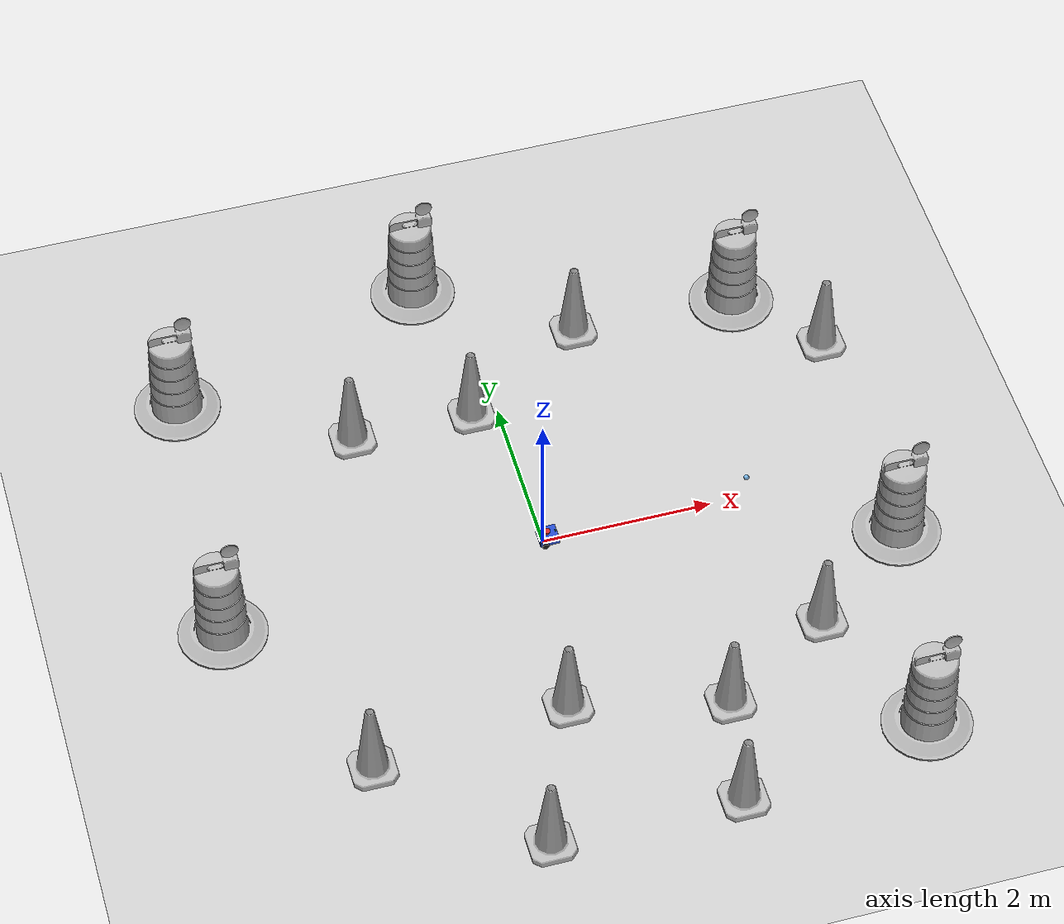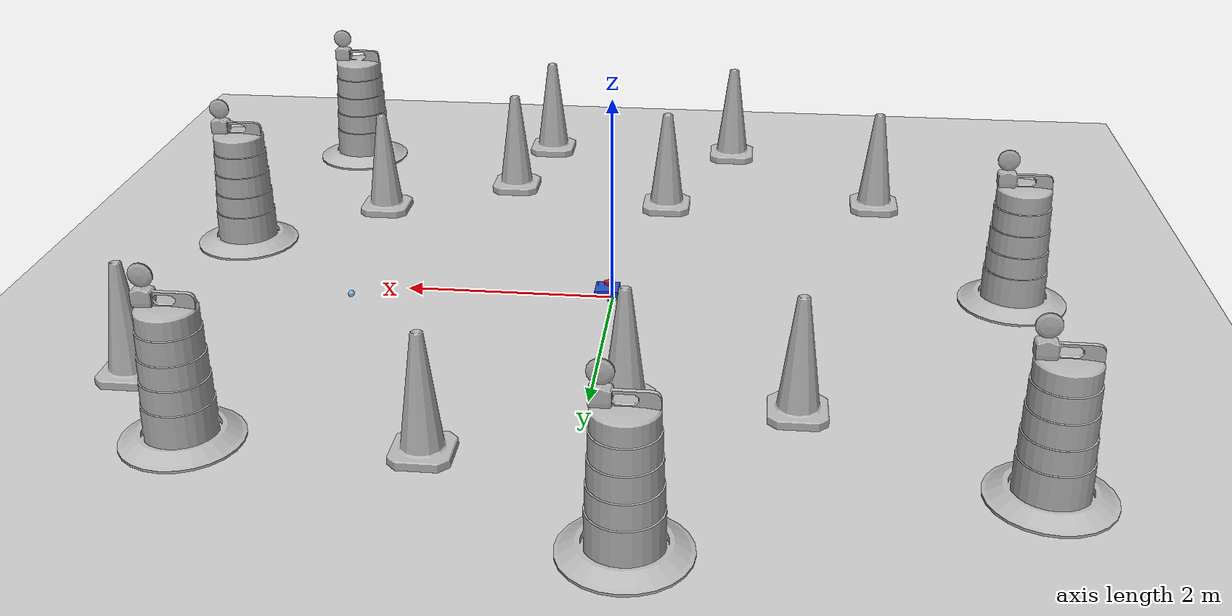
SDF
<sdf version="1.7">
 <world name="default">
  <light name="sun" type="directional">
   <pose>0 0 10 0 -0 0</pose>
   <diffuse>0.8 0.8 0.8 1</diffuse>
   <specular>0.2 0.2 0.2 1</specular>
   <attenuation>
    <range>1000</range>
    <constant>0.9</constant>
    <linear>0.01</linear>
    <quadratic>0.001</quadratic>
   </attenuation>
   <direction>-0.5 0.1 -0.9</direction>
   <spot><inner_angle>0</inner_angle><outer_angle>0</outer_angle><falloff>0</falloff></spot>
  </light>
  <model name="ground_plane">
   <static>1</static>
   <link name="link">
    <collision name="collision">
     <geometry><plane><normal>0 0 1</normal><size>100 100</size></plane></geometry>
     <surface>
      <contact><collide_bitmask>65535</collide_bitmask></contact>
      <friction><ode><mu>100</mu><mu2>50</mu2></ode></friction>
     </surface>
    </collision>
    <visual name="visual">
     <cast_shadows>0</cast_shadows>
     <geometry><plane><normal>0 0 1</normal><size>100 100</size></plane></geometry>
     <material>
      <script><uri>file://media/materials/scripts/gazebo.material</uri><name>Gazebo/Grey</name></script>
     </material>
    </visual>
   </link>
  </model>
  <gravity>0 0 -9.8</gravity>
  <magnetic_field>6e-06 2.3e-05 -4.2e-05</magnetic_field>
  <atmosphere type="adiabatic"/>
  <physics type="ode">
   <max_step_size>0.001</max_step_size>
   <real_time_factor>1</real_time_factor>
   <real_time_update_rate>1000</real_time_update_rate>
  </physics>
  <scene><ambient>0.4 0.4 0.4 1</ambient><background>0.7 0.7 0.7 1</background><shadows>1</shadows></scene>
  <audio><device>default</device></audio>
  <spherical_coordinates>
   <surface_model>EARTH_WGS84</surface_model>
   <latitude_deg>0</latitude_deg>
   <longitude_deg>0</longitude_deg>
   <elevation>0</elevation>
   <heading_deg>0</heading_deg>
  </spherical_coordinates>
  <model name="my_bot">
   <link name="base_link">
    <inertial>
     <pose>0.058676 0 0.043869 0 -0 0</pose>
     <mass>0.701</mass>
     <inertia>
      <ixx>0.00324724</ixx>
      <ixy>0</ixy>
      <ixz>0.000339625</ixz>
      <iyy>0.00355537</iyy>
      <iyz>0</iyz>
      <izz>0.00467089</izz>
     </inertia>
    </inertial>
    <collision name="base_link_fixed_joint_lump__chassis_collision">
     <pose>0.05251 0 0.037505 0 -0 0</pose>
     <geometry><box><size>0.225 0.225 0.07501</size></box></geometry>
    </collision>
    <collision name="base_link_fixed_joint_lump__caster_wheel_collision_1">
     <pose>0.10876 0 0 0 -0 0</pose>
     <geometry><sphere><radius>0.04</radius></sphere></geometry>
     <surface><friction><ode><mu>0.001</mu><mu2>0.001</mu2></ode></friction></surface>
    </collision>
    <collision name="base_link_fixed_joint_lump__laser_frame_collision_2">
     <pose>0.04001 0 0.12 0 -0 0</pose>
     <geometry><cylinder><length>0.025</length><radius>0.04</radius></cylinder></geometry>
    </collision>
    <collision name="base_link_fixed_joint_lump__imu_link_collision_3">
     <geometry><box><size>0.001 0.001 0.001</size></box></geometry>
    </collision>
    <visual name="base_link_fixed_joint_lump__chassis_visual">
     <pose>0.05251 0 0.037505 0 -0 0</pose>
     <geometry><box><size>0.225 0.225 0.07501</size></box></geometry>
     <material>
      <script><name>Gazebo/Blue</name><uri>file://media/materials/scripts/gazebo.material</uri></script>
     </material>
    </visual>
    <visual name="base_link_fixed_joint_lump__camera_link_visual_1">
     <pose>0.14001 0 0.10285 0 -0 0</pose>
     <geometry><box><size>0.005 0.025 0.025</size></box></geometry>
     <material>
      <script><name>Gazebo/Green</name><uri>file://media/materials/scripts/gazebo.material</uri></script>
     </material>
    </visual>
    <visual name="base_link_fixed_joint_lump__caster_wheel_visual_2">
     <pose>0.10876 0 0 0 -0 0</pose>
     <geometry><sphere><radius>0.04</radius></sphere></geometry>
     <material>
      <script><name>Gazebo/White</name><uri>file://media/materials/scripts/gazebo.material</uri></script>
     </material>
    </visual>
    <visual name="base_link_fixed_joint_lump__laser_frame_visual_3">
     <pose>0.04001 0 0.12 0 -0 0</pose>
     <geometry><cylinder><length>0.025</length><radius>0.04</radius></cylinder></geometry>
     <material>
      <script><name>Gazebo/Red</name><uri>file://media/materials/scripts/gazebo.material</uri></script>
     </material>
    </visual>
    <visual name="base_link_fixed_joint_lump__imu_link_visual_4">
     <geometry><box><size>0.001 0.001 0.001</size></box></geometry>
    </visual>
    <sensor name="camera" type="camera">
     <visualize>1</visualize>
     <update_rate>10</update_rate>
     <camera>
      <horizontal_fov>1.089</horizontal_fov>
      <image><format>R8G8B8</format><width>640</width><height>480</height></image>
      <clip><near>0.05</near><far>8</far></clip>
     </camera>
     <plugin name="camera_controller" filename="libgazebo_ros_camera.so">
      <frame_name>camera_link_optical</frame_name>
     </plugin>
     <pose>0.14001 0 0.10285 0 -0 0</pose>
    </sensor>
    <sensor name="laser" type="ray">
     <visualize>0</visualize>
     <update_rate>10</update_rate>
     <ray>
      <scan>
       <horizontal>
        <samples>360</samples>
        <min_angle>-3.14</min_angle>
        <max_angle>3.14</max_angle>
        <resolution>1</resolution>
       </horizontal>
       <vertical><samples>1</samples><min_angle>0</min_angle><max_angle>0</max_angle></vertical>
      </scan>
      <range><min>0.3</min><max>12</max></range>
     </ray>
     <plugin name="laser_controller" filename="libgazebo_ros_ray_sensor.so">
      <ros><argument>~/out:=scan</argument></ros>
      <output_type>sensor_msgs/LaserScan</output_type>
      <frame_name>laser_frame</frame_name>
     </plugin>
     <pose>0.04001 0 0.12 0 -0 0</pose>
    </sensor>
    <sensor name="imu_sensor" type="imu">
     <plugin name="imu_plugin" filename="libgazebo_ros_imu_sensor.so">
      <initial_orientation_as_reference>0</initial_orientation_as_reference>
      <frame_name>imu_link</frame_name>
      <ros><namespace>/imu</namespace><remapping>~/out:=data</remapping></ros>
     </plugin>
     <always_on>1</always_on>
     <update_rate>100</update_rate>
     <visualize>1</visualize>
     <imu>
      <angular_velocity>
       <x>
        <noise type="gaussian">
         <mean>0</mean>
         <stddev>0.0002</stddev>
         <bias_mean>7.5e-06</bias_mean>
         <bias_stddev>8e-07</bias_stddev>
        </noise>
       </x>
       <y>
        <noise type="gaussian">
         <mean>0</mean>
         <stddev>0.0002</stddev>
         <bias_mean>7.5e-06</bias_mean>
         <bias_stddev>8e-07</bias_stddev>
        </noise>
       </y>
       <z>
        <noise type="gaussian">
         <mean>0</mean>
         <stddev>0.0002</stddev>
         <bias_mean>7.5e-06</bias_mean>
         <bias_stddev>8e-07</bias_stddev>
        </noise>
       </z>
      </angular_velocity>
      <linear_acceleration>
       <x>
        <noise type="gaussian">
         <mean>0</mean>
         <stddev>0.017</stddev>
         <bias_mean>0.1</bias_mean>
         <bias_stddev>0.001</bias_stddev>
        </noise>
       </x>
       <y>
        <noise type="gaussian">
         <mean>0</mean>
         <stddev>0.017</stddev>
         <bias_mean>0.1</bias_mean>
         <bias_stddev>0.001</bias_stddev>
        </noise>
       </y>
       <z>
        <noise type="gaussian">
         <mean>0</mean>
         <stddev>0.017</stddev>
         <bias_mean>0.1</bias_mean>
         <bias_stddev>0.001</bias_stddev>
        </noise>
       </z>
      </linear_acceleration>
     </imu>
    </sensor>
   </link>
   <joint name="left_wheel_joint" type="revolute">
    <pose relative_to="base_link">0 0.11975 0 -1.5708 0 0</pose>
    <parent>base_link</parent>
    <child>left_wheel</child>
    <axis>
     <xyz>0 0 1</xyz>
     <limit><lower>-1e+16</lower><upper>1e+16</upper></limit>
     <dynamics><spring_reference>0</spring_reference><spring_stiffness>0</spring_stiffness></dynamics>
    </axis>
   </joint>
   <link name="left_wheel">
    <pose relative_to="left_wheel_joint">0 0 0 0 -0 0</pose>
    <inertial>
     <mass>0.1</mass>
     <inertia>
      <ixx>4.08333e-05</ixx>
      <ixy>0</ixy>
      <ixz>0</ixz>
      <iyy>4.08333e-05</iyy>
      <iyz>0</iyz>
      <izz>8e-05</izz>
     </inertia>
    </inertial>
    <collision name="left_wheel_collision">
     <geometry><cylinder><length>0.01</length><radius>0.04</radius></cylinder></geometry>
    </collision>
    <visual name="left_wheel_visual">
     <geometry><cylinder><length>0.01</length><radius>0.04</radius></cylinder></geometry>
     <material>
      <script><name>Gazebo/Black</name><uri>file://media/materials/scripts/gazebo.material</uri></script>
     </material>
    </visual>
   </link>
   <joint name="right_wheel_joint" type="revolute">
    <pose relative_to="base_link">0 -0.11975 0 1.5708 -0 0</pose>
    <parent>base_link</parent>
    <child>right_wheel</child>
    <axis>
     <xyz>0 0 -1</xyz>
     <limit><lower>-1e+16</lower><upper>1e+16</upper></limit>
     <dynamics><spring_reference>0</spring_reference><spring_stiffness>0</spring_stiffness></dynamics>
    </axis>
   </joint>
   <link name="right_wheel">
    <pose relative_to="right_wheel_joint">0 0 0 0 -0 0</pose>
    <inertial>
     <mass>0.1</mass>
     <inertia>
      <ixx>4.08333e-05</ixx>
      <ixy>0</ixy>
      <ixz>0</ixz>
      <iyy>4.08333e-05</iyy>
      <iyz>0</iyz>
      <izz>8e-05</izz>
     </inertia>
    </inertial>
    <collision name="right_wheel_collision">
     <geometry><cylinder><length>0.01</length><radius>0.04</radius></cylinder></geometry>
    </collision>
    <visual name="right_wheel_visual">
     <geometry><cylinder><length>0.01</length><radius>0.04</radius></cylinder></geometry>
     <material>
      <script><name>Gazebo/Black</name><uri>file://media/materials/scripts/gazebo.material</uri></script>
     </material>
    </visual>
   </link>
   <static>0</static>
   <plugin name="gazebo_ros2_control" filename="libgazebo_ros2_control.so">
    <parameters>/home/praveenrav702/comp_ws/install/autonomous_diffdrive_robot/share/autonomous_diffdrive_robot/config/my_controllers.yaml</parameters>
    <parameters>/home/praveenrav702/comp_ws/install/autonomous_diffdrive_robot/share/autonomous_diffdrive_robot/config/gaz_ros2_ctl_use_sim.yaml</parameters>
   </plugin>
   <pose>0.000276 2.3e-05 0.04 0 -0 0.002401</pose>
  </model>
  <model name="Construction Barrel">
   <link name="link">
    <inertial>
     <pose>0 0 0.4 0 -0 0</pose>
     <mass>500</mass>
     <inertia><ixx>51.2096</ixx><iyy>51.2096</iyy><izz>25</izz><ixy>0</ixy><ixz>0</ixz><iyz>0</iyz></inertia>
    </inertial>
    <collision name="collision">
     <geometry><mesh><uri>model://construction_barrel/meshes/construction_barrel.dae</uri></mesh></geometry>
    </collision>
    <visual name="visual">
     <geometry><mesh><uri>model://construction_barrel/meshes/construction_barrel.dae</uri></mesh></geometry>
    </visual>
   </link>
   <pose>3.17629 2.92123 -1e-06 2e-06 -1e-06 -2.7e-05</pose>
  </model>
  <model name="Construction Barrel_1">
   <link name="link">
    <inertial>
     <pose>0 0 0.4 0 -0 0</pose>
     <mass>500</mass>
     <inertia><ixx>51.2096</ixx><iyy>51.2096</iyy><izz>25</izz><ixy>0</ixy><ixz>0</ixz><iyz>0</iyz></inertia>
    </inertial>
    <collision name="collision">
     <geometry><mesh><uri>model://construction_barrel/meshes/construction_barrel.dae</uri></mesh></geometry>
    </collision>
    <visual name="visual">
     <geometry><mesh><uri>model://construction_barrel/meshes/construction_barrel.dae</uri></mesh></geometry>
    </visual>
   </link>
   <pose>-3.81202 -0.288482 -1e-06 2e-06 -1e-06 -2.4e-05</pose>
  </model>
  <model name="lacrosse_ball">
   <link name="link">
    <inertial>
     <mass>1</mass>
     <inertia><ixx>0.1</ixx><ixy>0</ixy><ixz>0</ixz><iyy>0.1</iyy><iyz>0</iyz><izz>0.1</izz></inertia>
    </inertial>
    <visual name="visual">
     <geometry><sphere><radius>0.03175</radius></sphere></geometry>
     <material>
      <script><name>Gazebo/SkyBlue</name><uri>file://media/materials/scripts/gazebo.material</uri></script>
      <shader type="pixel"><normal_map>__default__</normal_map></shader>
      <ambient>0.208 0.518 0.894 1</ambient>
      <diffuse>0.208 0.518 0.894 1</diffuse>
      <specular>0.01 0.01 0.01 1</specular>
      <emissive>0 0 0 1</emissive>
     </material>
    </visual>
    <collision name="collision">
     <geometry><sphere><radius>0.03175</radius></sphere></geometry>
     <surface>
      <friction>
       <ode><mu>1</mu><mu2>1</mu2><fdir1>0 0 0</fdir1><slip1>0</slip1><slip2>0</slip2></ode>
       <torsional>
        <coefficient>1</coefficient>
        <patch_radius>0</patch_radius>
        <surface_radius>0</surface_radius>
        <use_patch_radius>1</use_patch_radius>
        <ode><slip>0</slip></ode>
       </torsional>
      </friction>
      <bounce><restitution_coefficient>0</restitution_coefficient><threshold>1e+06</threshold></bounce>
      <contact>
       <collide_without_contact>0</collide_without_contact>
       <collide_without_contact_bitmask>1</collide_without_contact_bitmask>
       <collide_bitmask>1</collide_bitmask>
       <ode>
        <soft_cfm>0</soft_cfm>
        <soft_erp>0.2</soft_erp>
        <kp>1e+13</kp>
        <kd>1</kd>
        <max_vel>0.01</max_vel>
        <min_depth>0</min_depth>
       </ode>
       <bullet>
        <split_impulse>1</split_impulse>
        <split_impulse_penetration_threshold>-0.01</split_impulse_penetration_threshold>
        <soft_cfm>0</soft_cfm>
        <soft_erp>0.2</soft_erp>
        <kp>1e+13</kp>
        <kd>1</kd>
       </bullet>
      </contact>
     </surface>
    </collision>
   </link>
   <static>0</static>
   <pose>2.51288 0.235023 0.03175 0 -0 0</pose>
  </model>
  <model name="Construction Cone">
   <link name="link">
    <collision name="collision">
     <geometry>
      <mesh><scale>10 10 10</scale><uri>model://construction_cone/meshes/construction_cone.dae</uri></mesh>
     </geometry>
    </collision>
    <visual name="visual">
     <geometry>
      <mesh><scale>10 10 10</scale><uri>model://construction_cone/meshes/construction_cone.dae</uri></mesh>
     </geometry>
    </visual>
    <inertial>
     <inertia><ixx>1</ixx><ixy>0</ixy><ixz>0</ixz><iyy>1</iyy><iyz>0</iyz><izz>1</izz></inertia>
     <mass>1</mass>
    </inertial>
   </link>
   <pose>4.00476 1.96724 -0 0 -0 0</pose>
  </model>
  <model name="Construction Cone_0">
   <link name="link">
    <collision name="collision">
     <geometry>
      <mesh><scale>10 10 10</scale><uri>model://construction_cone/meshes/construction_cone.dae</uri></mesh>
     </geometry>
    </collision>
    <visual name="visual">
     <geometry>
      <mesh><scale>10 10 10</scale><uri>model://construction_cone/meshes/construction_cone.dae</uri></mesh>
     </geometry>
    </visual>
    <inertial>
     <inertia><ixx>1</ixx><ixy>0</ixy><ixz>0</ixz><iyy>1</iyy><iyz>0</iyz><izz>1</izz></inertia>
     <mass>1</mass>
    </inertial>
   </link>
   <pose>1.20568 2.94821 -9e-06 -1e-06 -0 -0</pose>
  </model>
  <model name="Construction Cone_1">
   <link name="link">
    <collision name="collision">
     <geometry>
      <mesh><scale>10 10 10</scale><uri>model://construction_cone/meshes/construction_cone.dae</uri></mesh>
     </geometry>
    </collision>
    <visual name="visual">
     <geometry>
      <mesh><scale>10 10 10</scale><uri>model://construction_cone/meshes/construction_cone.dae</uri></mesh>
     </geometry>
    </visual>
    <inertial>
     <inertia><ixx>1</ixx><ixy>0</ixy><ixz>0</ixz><iyy>1</iyy><iyz>0</iyz><izz>1</izz></inertia>
     <mass>1</mass>
    </inertial>
   </link>
   <pose>-1.74297 2.03214 -6e-06 -4e-06 0 0</pose>
  </model>
  <model name="Construction Cone_2">
   <link name="link">
    <collision name="collision">
     <geometry>
      <mesh><scale>10 10 10</scale><uri>model://construction_cone/meshes/construction_cone.dae</uri></mesh>
     </geometry>
    </collision>
    <visual name="visual">
     <geometry>
      <mesh><scale>10 10 10</scale><uri>model://construction_cone/meshes/construction_cone.dae</uri></mesh>
     </geometry>
    </visual>
    <inertial>
     <inertia><ixx>1</ixx><ixy>0</ixy><ixz>0</ixz><iyy>1</iyy><iyz>0</iyz><izz>1</izz></inertia>
     <mass>1</mass>
    </inertial>
   </link>
   <pose>-1.03959 -3.99182 -4e-06 4e-06 -1e-06 0</pose>
  </model>
  <model name="Construction Cone_3">
   <link name="link">
    <collision name="collision">
     <geometry>
      <mesh><scale>10 10 10</scale><uri>model://construction_cone/meshes/construction_cone.dae</uri></mesh>
     </geometry>
    </collision>
    <visual name="visual">
     <geometry>
      <mesh><scale>10 10 10</scale><uri>model://construction_cone/meshes/construction_cone.dae</uri></mesh>
     </geometry>
    </visual>
    <inertial>
     <inertia><ixx>1</ixx><ixy>0</ixy><ixz>0</ixz><iyy>1</iyy><iyz>0</iyz><izz>1</izz></inertia>
     <mass>1</mass>
    </inertial>
   </link>
   <pose>1.12766 -4.00476 -0 0 -0 0</pose>
  </model>
  <model name="Construction Cone_4">
   <link name="link">
    <collision name="collision">
     <geometry>
      <mesh><scale>10 10 10</scale><uri>model://construction_cone/meshes/construction_cone.dae</uri></mesh>
     </geometry>
    </collision>
    <visual name="visual">
     <geometry>
      <mesh><scale>10 10 10</scale><uri>model://construction_cone/meshes/construction_cone.dae</uri></mesh>
     </geometry>
    </visual>
    <inertial>
     <inertia><ixx>1</ixx><ixy>0</ixy><ixz>0</ixz><iyy>1</iyy><iyz>0</iyz><izz>1</izz></inertia>
     <mass>1</mass>
    </inertial>
   </link>
   <pose>-2.64078 -2.53212 -1e-05 -1e-06 0 0</pose>
  </model>
  <model name="Construction Barrel_2">
   <link name="link">
    <inertial>
     <pose>0 0 0.4 0 -0 0</pose>
     <mass>500</mass>
     <inertia><ixx>51.2096</ixx><iyy>51.2096</iyy><izz>25</izz><ixy>0</ixy><ixz>0</ixz><iyz>0</iyz></inertia>
    </inertial>
    <collision name="collision">
     <geometry><mesh><uri>model://construction_barrel/meshes/construction_barrel.dae</uri></mesh></geometry>
    </collision>
    <visual name="visual">
     <geometry><mesh><uri>model://construction_barrel/meshes/construction_barrel.dae</uri></mesh></geometry>
    </visual>
   </link>
   <pose>3.93538 -0.961138 1e-06 4e-06 3e-06 -2.6e-05</pose>
  </model>
  <model name="Construction Cone_7">
   <link name="link">
    <collision name="collision">
     <geometry>
      <mesh><scale>10 10 10</scale><uri>model://construction_cone/meshes/construction_cone.dae</uri></mesh>
     </geometry>
    </collision>
    <visual name="visual">
     <geometry>
      <mesh><scale>10 10 10</scale><uri>model://construction_cone/meshes/construction_cone.dae</uri></mesh>
     </geometry>
    </visual>
    <inertial>
     <inertia><ixx>1</ixx><ixy>0</ixy><ixz>0</ixz><iyy>1</iyy><iyz>0</iyz><izz>1</izz></inertia>
     <mass>1</mass>
    </inertial>
   </link>
   <pose>-0.366343 -2.31171 -0 0 -1e-06 0</pose>
  </model>
  <model name="Construction Cone_6">
   <link name="link">
    <collision name="collision">
     <geometry>
      <mesh><scale>10 10 10</scale><uri>model://construction_cone/meshes/construction_cone.dae</uri></mesh>
     </geometry>
    </collision>
    <visual name="visual">
     <geometry>
      <mesh><scale>10 10 10</scale><uri>model://construction_cone/meshes/construction_cone.dae</uri></mesh>
     </geometry>
    </visual>
    <inertial>
     <inertia><ixx>1</ixx><ixy>0</ixy><ixz>0</ixz><iyy>1</iyy><iyz>0</iyz><izz>1</izz></inertia>
     <mass>1</mass>
    </inertial>
   </link>
   <pose>2.70127 -1.96064 -4e-06 4e-06 -1e-06 0</pose>
  </model>
  <model name="Construction Cone_8">
   <link name="link">
    <collision name="collision">
     <geometry>
      <mesh><scale>10 10 10</scale><uri>model://construction_cone/meshes/construction_cone.dae</uri></mesh>
     </geometry>
    </collision>
    <visual name="visual">
     <geometry>
      <mesh><scale>10 10 10</scale><uri>model://construction_cone/meshes/construction_cone.dae</uri></mesh>
     </geometry>
    </visual>
    <inertial>
     <inertia><ixx>1</ixx><ixy>0</ixy><ixz>0</ixz><iyy>1</iyy><iyz>0</iyz><izz>1</izz></inertia>
     <mass>1</mass>
    </inertial>
   </link>
   <pose>1.37538 -2.74298 -0 0 -0 0</pose>
  </model>
  <model name="Construction Cone_5">
   <link name="link">
    <collision name="collision">
     <geometry>
      <mesh><scale>10 10 10</scale><uri>model://construction_cone/meshes/construction_cone.dae</uri></mesh>
     </geometry>
    </collision>
    <visual name="visual">
     <geometry>
      <mesh><scale>10 10 10</scale><uri>model://construction_cone/meshes/construction_cone.dae</uri></mesh>
     </geometry>
    </visual>
    <inertial>
     <inertia><ixx>1</ixx><ixy>0</ixy><ixz>0</ixz><iyy>1</iyy><iyz>0</iyz><izz>1</izz></inertia>
     <mass>1</mass>
    </inertial>
   </link>
   <pose>-0.304059 2.0179 -0 0 -1e-06 0</pose>
  </model>
  <model name="Construction Barrel_0">
   <link name="link">
    <inertial>
     <pose>0 0 0.4 0 -0 0</pose>
     <mass>500</mass>
     <inertia><ixx>51.2096</ixx><iyy>51.2096</iyy><izz>25</izz><ixy>0</ixy><ixz>0</ixz><iyz>0</iyz></inertia>
    </inertial>
    <collision name="collision">
     <geometry><mesh><uri>model://construction_barrel/meshes/construction_barrel.dae</uri></mesh></geometry>
    </collision>
    <visual name="visual">
     <geometry><mesh><uri>model://construction_barrel/meshes/construction_barrel.dae</uri></mesh></geometry>
    </visual>
   </link>
   <pose>3.37398 -3.5814 1e-06 2e-06 3e-06 -6e-06</pose>
  </model>
  <model name="Construction Barrel_3">
   <link name="link">
    <inertial>
     <pose>0 0 0.4 0 -0 0</pose>
     <mass>500</mass>
     <inertia><ixx>51.2096</ixx><iyy>51.2096</iyy><izz>25</izz><ixy>0</ixy><ixz>0</ixz><iyz>0</iyz></inertia>
    </inertial>
    <collision name="collision">
     <geometry><mesh><uri>model://construction_barrel/meshes/construction_barrel.dae</uri></mesh></geometry>
    </collision>
    <visual name="visual">
     <geometry><mesh><uri>model://construction_barrel/meshes/construction_barrel.dae</uri></mesh></geometry>
    </visual>
   </link>
   <pose>-0.496121 4.06543 0 0 0 -3e-06</pose>
  </model>
  <model name="Construction Barrel_4">
   <link name="link">
    <inertial>
     <pose>0 0 0.4 0 -0 0</pose>
     <mass>500</mass>
     <inertia><ixx>51.2096</ixx><iyy>51.2096</iyy><izz>25</izz><ixy>0</ixy><ixz>0</ixz><iyz>0</iyz></inertia>
    </inertial>
    <collision name="collision">
     <geometry><mesh><uri>model://construction_barrel/meshes/construction_barrel.dae</uri></mesh></geometry>
    </collision>
    <visual name="visual">
     <geometry><mesh><uri>model://construction_barrel/meshes/construction_barrel.dae</uri></mesh></geometry>
    </visual>
   </link>
   <pose>-3.61201 3.06765 -1e-06 3e-06 -2e-06 -2e-06</pose>
  </model>
 </world>
</sdf>
